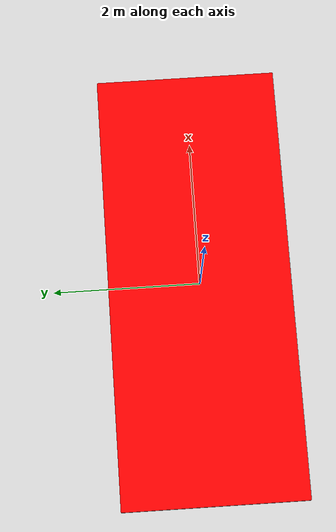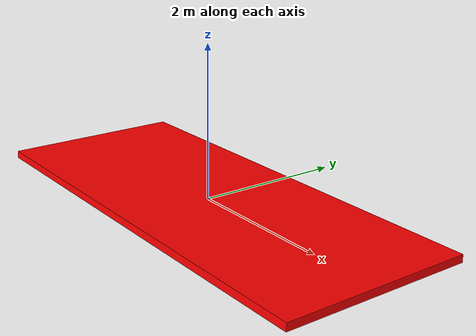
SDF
<sdf version="1.6">
    <model name="white_plane">
        <static>true</static>
        <link name="base_link">
            <visual name="base_visual">
                <geometry>
                    <box>
                        <size>6 2.5 0.1</size>
                    </box>
                </geometry>
                <material>
                    <ambient>1 0 0 1</ambient>  <!-- Red color -->
                    <diffuse>1 0 0 1</diffuse>  <!-- Red color -->
                    <specular>0.1 0.1 0.1 1</specular>
                    <emissive>0 0 0 0</emissive> <!-- No emission color -->
                </material>
            </visual>
            <collision name="base_collision">
                <geometry>
                    <box>
                        <size>6 2.5 0.1</size>
                    </box>
                </geometry>
            </collision>
        </link>
    </model>
</sdf>
